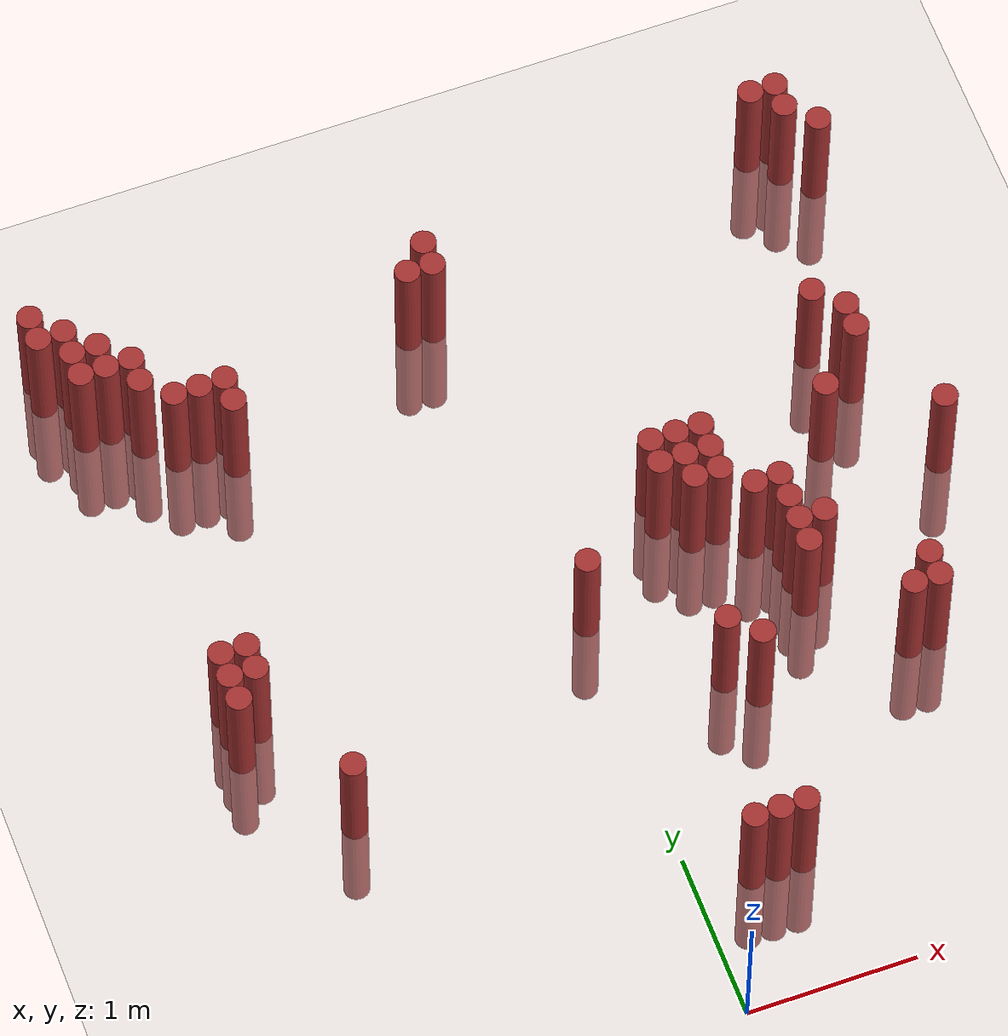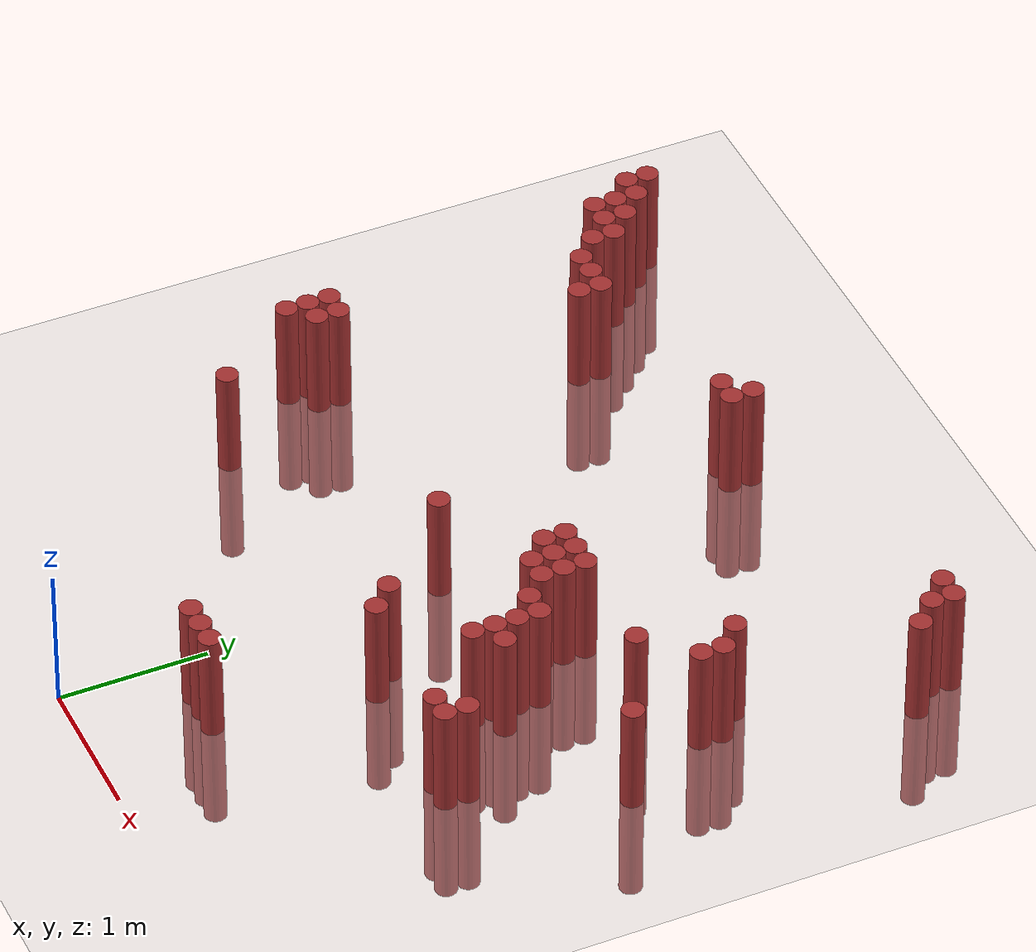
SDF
<sdf version="1.6">
 <world name="default">
  <model name="ground_plane">
   <static>1</static>
   <link name="link">
    <collision name="collision">
     <geometry><plane><normal>0 0 1</normal><size>100 100</size></plane></geometry>
     <surface><friction><ode><mu>100</mu><mu2>50</mu2></ode></friction></surface>
    </collision>
    <visual name="visual">
     <cast_shadows>0</cast_shadows>
     <geometry><plane><normal>0 0 1</normal><size>100 100</size></plane></geometry>
     <material>
      <script><uri>file://media/materials/scripts/gazebo.material</uri><name>Gazebo/Grey</name></script>
     </material>
    </visual>
   </link>
  </model>
  <model name="unit_cylinder_312">
   <static>1</static>
   <pose>-2.375000 4.975000 0.000000 0.000000 0.000000 0.000000</pose>
   <link name="link">
    <inertial>
     <mass>1</mass>
     <inertia><ixx>0.145833</ixx><ixy>0</ixy><ixz>0</ixz><iyy>0.145833</iyy><iyz>0</iyz><izz>0.125</izz></inertia>
    </inertial>
    <collision name="collision">
     <geometry><cylinder><radius>0.075000</radius><length>1.5</length></cylinder></geometry>
    </collision>
    <visual name="visual">
     <geometry><cylinder><radius>0.075000</radius><length>1.5</length></cylinder></geometry>
     <material>
      <ambient>0.648000 0.192000 0.192000 1</ambient>
      <diffuse>0.648000 0.192000 0.192000 1</diffuse>
     </material>
     <material>
      <script><name>Gazebo/Grey</name><uri>file://media/materials/scripts/gazebo.material</uri></script>
     </material>
    </visual>
   </link>
  </model>
  <model name="unit_cylinder_313">
   <static>1</static>
   <pose>-2.375000 5.125000 0.000000 0.000000 0.000000 0.000000</pose>
   <link name="link">
    <inertial>
     <mass>1</mass>
     <inertia><ixx>0.145833</ixx><ixy>0</ixy><ixz>0</ixz><iyy>0.145833</iyy><iyz>0</iyz><izz>0.125</izz></inertia>
    </inertial>
    <collision name="collision">
     <geometry><cylinder><radius>0.075000</radius><length>1.5</length></cylinder></geometry>
    </collision>
    <visual name="visual">
     <geometry><cylinder><radius>0.075000</radius><length>1.5</length></cylinder></geometry>
     <material>
      <ambient>0.648000 0.192000 0.192000 1</ambient>
      <diffuse>0.648000 0.192000 0.192000 1</diffuse>
     </material>
     <material>
      <script><name>Gazebo/Grey</name><uri>file://media/materials/scripts/gazebo.material</uri></script>
     </material>
    </visual>
   </link>
  </model>
  <model name="unit_cylinder_316">
   <static>1</static>
   <pose>-2.225000 4.675000 0.000000 0.000000 0.000000 0.000000</pose>
   <link name="link">
    <inertial>
     <mass>1</mass>
     <inertia><ixx>0.145833</ixx><ixy>0</ixy><ixz>0</ixz><iyy>0.145833</iyy><iyz>0</iyz><izz>0.125</izz></inertia>
    </inertial>
    <collision name="collision">
     <geometry><cylinder><radius>0.075000</radius><length>1.5</length></cylinder></geometry>
    </collision>
    <visual name="visual">
     <geometry><cylinder><radius>0.075000</radius><length>1.5</length></cylinder></geometry>
     <material>
      <ambient>0.648000 0.192000 0.192000 1</ambient>
      <diffuse>0.648000 0.192000 0.192000 1</diffuse>
     </material>
     <material>
      <script><name>Gazebo/Grey</name><uri>file://media/materials/scripts/gazebo.material</uri></script>
     </material>
    </visual>
   </link>
  </model>
  <model name="unit_cylinder_317">
   <static>1</static>
   <pose>-2.225000 4.825000 0.000000 0.000000 0.000000 0.000000</pose>
   <link name="link">
    <inertial>
     <mass>1</mass>
     <inertia><ixx>0.145833</ixx><ixy>0</ixy><ixz>0</ixz><iyy>0.145833</iyy><iyz>0</iyz><izz>0.125</izz></inertia>
    </inertial>
    <collision name="collision">
     <geometry><cylinder><radius>0.075000</radius><length>1.5</length></cylinder></geometry>
    </collision>
    <visual name="visual">
     <geometry><cylinder><radius>0.075000</radius><length>1.5</length></cylinder></geometry>
     <material>
      <ambient>0.648000 0.192000 0.192000 1</ambient>
      <diffuse>0.648000 0.192000 0.192000 1</diffuse>
     </material>
     <material>
      <script><name>Gazebo/Grey</name><uri>file://media/materials/scripts/gazebo.material</uri></script>
     </material>
    </visual>
   </link>
  </model>
  <model name="unit_cylinder_318">
   <static>1</static>
   <pose>-2.225000 4.975000 0.000000 0.000000 0.000000 0.000000</pose>
   <link name="link">
    <inertial>
     <mass>1</mass>
     <inertia><ixx>0.145833</ixx><ixy>0</ixy><ixz>0</ixz><iyy>0.145833</iyy><iyz>0</iyz><izz>0.125</izz></inertia>
    </inertial>
    <collision name="collision">
     <geometry><cylinder><radius>0.075000</radius><length>1.5</length></cylinder></geometry>
    </collision>
    <visual name="visual">
     <geometry><cylinder><radius>0.075000</radius><length>1.5</length></cylinder></geometry>
     <material>
      <ambient>0.648000 0.192000 0.192000 1</ambient>
      <diffuse>0.648000 0.192000 0.192000 1</diffuse>
     </material>
     <material>
      <script><name>Gazebo/Grey</name><uri>file://media/materials/scripts/gazebo.material</uri></script>
     </material>
    </visual>
   </link>
  </model>
  <model name="unit_cylinder_322">
   <static>1</static>
   <pose>-2.075000 2.425000 0.000000 0.000000 0.000000 0.000000</pose>
   <link name="link">
    <inertial>
     <mass>1</mass>
     <inertia><ixx>0.145833</ixx><ixy>0</ixy><ixz>0</ixz><iyy>0.145833</iyy><iyz>0</iyz><izz>0.125</izz></inertia>
    </inertial>
    <collision name="collision">
     <geometry><cylinder><radius>0.075000</radius><length>1.5</length></cylinder></geometry>
    </collision>
    <visual name="visual">
     <geometry><cylinder><radius>0.075000</radius><length>1.5</length></cylinder></geometry>
     <material>
      <ambient>0.648000 0.192000 0.192000 1</ambient>
      <diffuse>0.648000 0.192000 0.192000 1</diffuse>
     </material>
     <material>
      <script><name>Gazebo/Grey</name><uri>file://media/materials/scripts/gazebo.material</uri></script>
     </material>
    </visual>
   </link>
  </model>
  <model name="unit_cylinder_323">
   <static>1</static>
   <pose>-2.075000 2.575000 0.000000 0.000000 0.000000 0.000000</pose>
   <link name="link">
    <inertial>
     <mass>1</mass>
     <inertia><ixx>0.145833</ixx><ixy>0</ixy><ixz>0</ixz><iyy>0.145833</iyy><iyz>0</iyz><izz>0.125</izz></inertia>
    </inertial>
    <collision name="collision">
     <geometry><cylinder><radius>0.075000</radius><length>1.5</length></cylinder></geometry>
    </collision>
    <visual name="visual">
     <geometry><cylinder><radius>0.075000</radius><length>1.5</length></cylinder></geometry>
     <material>
      <ambient>0.648000 0.192000 0.192000 1</ambient>
      <diffuse>0.648000 0.192000 0.192000 1</diffuse>
     </material>
     <material>
      <script><name>Gazebo/Grey</name><uri>file://media/materials/scripts/gazebo.material</uri></script>
     </material>
    </visual>
   </link>
  </model>
  <model name="unit_cylinder_324">
   <static>1</static>
   <pose>-2.075000 2.725000 0.000000 0.000000 0.000000 0.000000</pose>
   <link name="link">
    <inertial>
     <mass>1</mass>
     <inertia><ixx>0.145833</ixx><ixy>0</ixy><ixz>0</ixz><iyy>0.145833</iyy><iyz>0</iyz><izz>0.125</izz></inertia>
    </inertial>
    <collision name="collision">
     <geometry><cylinder><radius>0.075000</radius><length>1.5</length></cylinder></geometry>
    </collision>
    <visual name="visual">
     <geometry><cylinder><radius>0.075000</radius><length>1.5</length></cylinder></geometry>
     <material>
      <ambient>0.648000 0.192000 0.192000 1</ambient>
      <diffuse>0.648000 0.192000 0.192000 1</diffuse>
     </material>
     <material>
      <script><name>Gazebo/Grey</name><uri>file://media/materials/scripts/gazebo.material</uri></script>
     </material>
    </visual>
   </link>
  </model>
  <model name="unit_cylinder_325">
   <static>1</static>
   <pose>-2.075000 4.675000 0.000000 0.000000 0.000000 0.000000</pose>
   <link name="link">
    <inertial>
     <mass>1</mass>
     <inertia><ixx>0.145833</ixx><ixy>0</ixy><ixz>0</ixz><iyy>0.145833</iyy><iyz>0</iyz><izz>0.125</izz></inertia>
    </inertial>
    <collision name="collision">
     <geometry><cylinder><radius>0.075000</radius><length>1.5</length></cylinder></geometry>
    </collision>
    <visual name="visual">
     <geometry><cylinder><radius>0.075000</radius><length>1.5</length></cylinder></geometry>
     <material>
      <ambient>0.648000 0.192000 0.192000 1</ambient>
      <diffuse>0.648000 0.192000 0.192000 1</diffuse>
     </material>
     <material>
      <script><name>Gazebo/Grey</name><uri>file://media/materials/scripts/gazebo.material</uri></script>
     </material>
    </visual>
   </link>
  </model>
  <model name="unit_cylinder_326">
   <static>1</static>
   <pose>-2.075000 4.825000 0.000000 0.000000 0.000000 0.000000</pose>
   <link name="link">
    <inertial>
     <mass>1</mass>
     <inertia><ixx>0.145833</ixx><ixy>0</ixy><ixz>0</ixz><iyy>0.145833</iyy><iyz>0</iyz><izz>0.125</izz></inertia>
    </inertial>
    <collision name="collision">
     <geometry><cylinder><radius>0.075000</radius><length>1.5</length></cylinder></geometry>
    </collision>
    <visual name="visual">
     <geometry><cylinder><radius>0.075000</radius><length>1.5</length></cylinder></geometry>
     <material>
      <ambient>0.648000 0.192000 0.192000 1</ambient>
      <diffuse>0.648000 0.192000 0.192000 1</diffuse>
     </material>
     <material>
      <script><name>Gazebo/Grey</name><uri>file://media/materials/scripts/gazebo.material</uri></script>
     </material>
    </visual>
   </link>
  </model>
  <model name="unit_cylinder_328">
   <static>1</static>
   <pose>-1.925000 2.575000 0.000000 0.000000 0.000000 0.000000</pose>
   <link name="link">
    <inertial>
     <mass>1</mass>
     <inertia><ixx>0.145833</ixx><ixy>0</ixy><ixz>0</ixz><iyy>0.145833</iyy><iyz>0</iyz><izz>0.125</izz></inertia>
    </inertial>
    <collision name="collision">
     <geometry><cylinder><radius>0.075000</radius><length>1.5</length></cylinder></geometry>
    </collision>
    <visual name="visual">
     <geometry><cylinder><radius>0.075000</radius><length>1.5</length></cylinder></geometry>
     <material>
      <ambient>0.648000 0.192000 0.192000 1</ambient>
      <diffuse>0.648000 0.192000 0.192000 1</diffuse>
     </material>
     <material>
      <script><name>Gazebo/Grey</name><uri>file://media/materials/scripts/gazebo.material</uri></script>
     </material>
    </visual>
   </link>
  </model>
  <model name="unit_cylinder_329">
   <static>1</static>
   <pose>-1.925000 2.725000 0.000000 0.000000 0.000000 0.000000</pose>
   <link name="link">
    <inertial>
     <mass>1</mass>
     <inertia><ixx>0.145833</ixx><ixy>0</ixy><ixz>0</ixz><iyy>0.145833</iyy><iyz>0</iyz><izz>0.125</izz></inertia>
    </inertial>
    <collision name="collision">
     <geometry><cylinder><radius>0.075000</radius><length>1.5</length></cylinder></geometry>
    </collision>
    <visual name="visual">
     <geometry><cylinder><radius>0.075000</radius><length>1.5</length></cylinder></geometry>
     <material>
      <ambient>0.648000 0.192000 0.192000 1</ambient>
      <diffuse>0.648000 0.192000 0.192000 1</diffuse>
     </material>
     <material>
      <script><name>Gazebo/Grey</name><uri>file://media/materials/scripts/gazebo.material</uri></script>
     </material>
    </visual>
   </link>
  </model>
  <model name="unit_cylinder_330">
   <static>1</static>
   <pose>-1.925000 4.525000 0.000000 0.000000 0.000000 0.000000</pose>
   <link name="link">
    <inertial>
     <mass>1</mass>
     <inertia><ixx>0.145833</ixx><ixy>0</ixy><ixz>0</ixz><iyy>0.145833</iyy><iyz>0</iyz><izz>0.125</izz></inertia>
    </inertial>
    <collision name="collision">
     <geometry><cylinder><radius>0.075000</radius><length>1.5</length></cylinder></geometry>
    </collision>
    <visual name="visual">
     <geometry><cylinder><radius>0.075000</radius><length>1.5</length></cylinder></geometry>
     <material>
      <ambient>0.648000 0.192000 0.192000 1</ambient>
      <diffuse>0.648000 0.192000 0.192000 1</diffuse>
     </material>
     <material>
      <script><name>Gazebo/Grey</name><uri>file://media/materials/scripts/gazebo.material</uri></script>
     </material>
    </visual>
   </link>
  </model>
  <model name="unit_cylinder_331">
   <static>1</static>
   <pose>-1.925000 4.675000 0.000000 0.000000 0.000000 0.000000</pose>
   <link name="link">
    <inertial>
     <mass>1</mass>
     <inertia><ixx>0.145833</ixx><ixy>0</ixy><ixz>0</ixz><iyy>0.145833</iyy><iyz>0</iyz><izz>0.125</izz></inertia>
    </inertial>
    <collision name="collision">
     <geometry><cylinder><radius>0.075000</radius><length>1.5</length></cylinder></geometry>
    </collision>
    <visual name="visual">
     <geometry><cylinder><radius>0.075000</radius><length>1.5</length></cylinder></geometry>
     <material>
      <ambient>0.648000 0.192000 0.192000 1</ambient>
      <diffuse>0.648000 0.192000 0.192000 1</diffuse>
     </material>
     <material>
      <script><name>Gazebo/Grey</name><uri>file://media/materials/scripts/gazebo.material</uri></script>
     </material>
    </visual>
   </link>
  </model>
  <model name="unit_cylinder_333">
   <static>1</static>
   <pose>-1.775000 4.375000 0.000000 0.000000 0.000000 0.000000</pose>
   <link name="link">
    <inertial>
     <mass>1</mass>
     <inertia><ixx>0.145833</ixx><ixy>0</ixy><ixz>0</ixz><iyy>0.145833</iyy><iyz>0</iyz><izz>0.125</izz></inertia>
    </inertial>
    <collision name="collision">
     <geometry><cylinder><radius>0.075000</radius><length>1.5</length></cylinder></geometry>
    </collision>
    <visual name="visual">
     <geometry><cylinder><radius>0.075000</radius><length>1.5</length></cylinder></geometry>
     <material>
      <ambient>0.648000 0.192000 0.192000 1</ambient>
      <diffuse>0.648000 0.192000 0.192000 1</diffuse>
     </material>
     <material>
      <script><name>Gazebo/Grey</name><uri>file://media/materials/scripts/gazebo.material</uri></script>
     </material>
    </visual>
   </link>
  </model>
  <model name="unit_cylinder_336">
   <static>1</static>
   <pose>-1.625000 1.825000 0.000000 0.000000 0.000000 0.000000</pose>
   <link name="link">
    <inertial>
     <mass>1</mass>
     <inertia><ixx>0.145833</ixx><ixy>0</ixy><ixz>0</ixz><iyy>0.145833</iyy><iyz>0</iyz><izz>0.125</izz></inertia>
    </inertial>
    <collision name="collision">
     <geometry><cylinder><radius>0.075000</radius><length>1.5</length></cylinder></geometry>
    </collision>
    <visual name="visual">
     <geometry><cylinder><radius>0.075000</radius><length>1.5</length></cylinder></geometry>
     <material>
      <ambient>0.648000 0.192000 0.192000 1</ambient>
      <diffuse>0.648000 0.192000 0.192000 1</diffuse>
     </material>
     <material>
      <script><name>Gazebo/Grey</name><uri>file://media/materials/scripts/gazebo.material</uri></script>
     </material>
    </visual>
   </link>
  </model>
  <model name="unit_cylinder_337">
   <static>1</static>
   <pose>-1.625000 4.375000 0.000000 0.000000 0.000000 0.000000</pose>
   <link name="link">
    <inertial>
     <mass>1</mass>
     <inertia><ixx>0.145833</ixx><ixy>0</ixy><ixz>0</ixz><iyy>0.145833</iyy><iyz>0</iyz><izz>0.125</izz></inertia>
    </inertial>
    <collision name="collision">
     <geometry><cylinder><radius>0.075000</radius><length>1.5</length></cylinder></geometry>
    </collision>
    <visual name="visual">
     <geometry><cylinder><radius>0.075000</radius><length>1.5</length></cylinder></geometry>
     <material>
      <ambient>0.648000 0.192000 0.192000 1</ambient>
      <diffuse>0.648000 0.192000 0.192000 1</diffuse>
     </material>
     <material>
      <script><name>Gazebo/Grey</name><uri>file://media/materials/scripts/gazebo.material</uri></script>
     </material>
    </visual>
   </link>
  </model>
  <model name="unit_cylinder_338">
   <static>1</static>
   <pose>-1.475000 4.225000 0.000000 0.000000 0.000000 0.000000</pose>
   <link name="link">
    <inertial>
     <mass>1</mass>
     <inertia><ixx>0.145833</ixx><ixy>0</ixy><ixz>0</ixz><iyy>0.145833</iyy><iyz>0</iyz><izz>0.125</izz></inertia>
    </inertial>
    <collision name="collision">
     <geometry><cylinder><radius>0.075000</radius><length>1.5</length></cylinder></geometry>
    </collision>
    <visual name="visual">
     <geometry><cylinder><radius>0.075000</radius><length>1.5</length></cylinder></geometry>
     <material>
      <ambient>0.648000 0.192000 0.192000 1</ambient>
      <diffuse>0.648000 0.192000 0.192000 1</diffuse>
     </material>
     <material>
      <script><name>Gazebo/Grey</name><uri>file://media/materials/scripts/gazebo.material</uri></script>
     </material>
    </visual>
   </link>
  </model>
  <model name="unit_cylinder_339">
   <static>1</static>
   <pose>-1.475000 4.375000 0.000000 0.000000 0.000000 0.000000</pose>
   <link name="link">
    <inertial>
     <mass>1</mass>
     <inertia><ixx>0.145833</ixx><ixy>0</ixy><ixz>0</ixz><iyy>0.145833</iyy><iyz>0</iyz><izz>0.125</izz></inertia>
    </inertial>
    <collision name="collision">
     <geometry><cylinder><radius>0.075000</radius><length>1.5</length></cylinder></geometry>
    </collision>
    <visual name="visual">
     <geometry><cylinder><radius>0.075000</radius><length>1.5</length></cylinder></geometry>
     <material>
      <ambient>0.648000 0.192000 0.192000 1</ambient>
      <diffuse>0.648000 0.192000 0.192000 1</diffuse>
     </material>
     <material>
      <script><name>Gazebo/Grey</name><uri>file://media/materials/scripts/gazebo.material</uri></script>
     </material>
    </visual>
   </link>
  </model>
  <model name="unit_cylinder_340">
   <static>1</static>
   <pose>-0.275000 4.675000 0.000000 0.000000 0.000000 0.000000</pose>
   <link name="link">
    <inertial>
     <mass>1</mass>
     <inertia><ixx>0.145833</ixx><ixy>0</ixy><ixz>0</ixz><iyy>0.145833</iyy><iyz>0</iyz><izz>0.125</izz></inertia>
    </inertial>
    <collision name="collision">
     <geometry><cylinder><radius>0.075000</radius><length>1.5</length></cylinder></geometry>
    </collision>
    <visual name="visual">
     <geometry><cylinder><radius>0.075000</radius><length>1.5</length></cylinder></geometry>
     <material>
      <ambient>0.648000 0.192000 0.192000 1</ambient>
      <diffuse>0.648000 0.192000 0.192000 1</diffuse>
     </material>
     <material>
      <script><name>Gazebo/Grey</name><uri>file://media/materials/scripts/gazebo.material</uri></script>
     </material>
    </visual>
   </link>
  </model>
  <model name="unit_cylinder_341">
   <static>1</static>
   <pose>-0.125000 4.675000 0.000000 0.000000 0.000000 0.000000</pose>
   <link name="link">
    <inertial>
     <mass>1</mass>
     <inertia><ixx>0.145833</ixx><ixy>0</ixy><ixz>0</ixz><iyy>0.145833</iyy><iyz>0</iyz><izz>0.125</izz></inertia>
    </inertial>
    <collision name="collision">
     <geometry><cylinder><radius>0.075000</radius><length>1.5</length></cylinder></geometry>
    </collision>
    <visual name="visual">
     <geometry><cylinder><radius>0.075000</radius><length>1.5</length></cylinder></geometry>
     <material>
      <ambient>0.648000 0.192000 0.192000 1</ambient>
      <diffuse>0.648000 0.192000 0.192000 1</diffuse>
     </material>
     <material>
      <script><name>Gazebo/Grey</name><uri>file://media/materials/scripts/gazebo.material</uri></script>
     </material>
    </visual>
   </link>
  </model>
  <model name="unit_cylinder_342">
   <static>1</static>
   <pose>-0.125000 4.825000 0.000000 0.000000 0.000000 0.000000</pose>
   <link name="link">
    <inertial>
     <mass>1</mass>
     <inertia><ixx>0.145833</ixx><ixy>0</ixy><ixz>0</ixz><iyy>0.145833</iyy><iyz>0</iyz><izz>0.125</izz></inertia>
    </inertial>
    <collision name="collision">
     <geometry><cylinder><radius>0.075000</radius><length>1.5</length></cylinder></geometry>
    </collision>
    <visual name="visual">
     <geometry><cylinder><radius>0.075000</radius><length>1.5</length></cylinder></geometry>
     <material>
      <ambient>0.648000 0.192000 0.192000 1</ambient>
      <diffuse>0.648000 0.192000 0.192000 1</diffuse>
     </material>
     <material>
      <script><name>Gazebo/Grey</name><uri>file://media/materials/scripts/gazebo.material</uri></script>
     </material>
    </visual>
   </link>
  </model>
  <model name="unit_cylinder_343">
   <static>1</static>
   <pose>0.025000 2.575000 0.000000 0.000000 0.000000 0.000000</pose>
   <link name="link">
    <inertial>
     <mass>1</mass>
     <inertia><ixx>0.145833</ixx><ixy>0</ixy><ixz>0</ixz><iyy>0.145833</iyy><iyz>0</iyz><izz>0.125</izz></inertia>
    </inertial>
    <collision name="collision">
     <geometry><cylinder><radius>0.075000</radius><length>1.5</length></cylinder></geometry>
    </collision>
    <visual name="visual">
     <geometry><cylinder><radius>0.075000</radius><length>1.5</length></cylinder></geometry>
     <material>
      <ambient>0.648000 0.192000 0.192000 1</ambient>
      <diffuse>0.648000 0.192000 0.192000 1</diffuse>
     </material>
     <material>
      <script><name>Gazebo/Grey</name><uri>file://media/materials/scripts/gazebo.material</uri></script>
     </material>
    </visual>
   </link>
  </model>
  <model name="unit_cylinder_347">
   <static>1</static>
   <pose>0.325000 0.775000 0.000000 0.000000 0.000000 0.000000</pose>
   <link name="link">
    <inertial>
     <mass>1</mass>
     <inertia><ixx>0.145833</ixx><ixy>0</ixy><ixz>0</ixz><iyy>0.145833</iyy><iyz>0</iyz><izz>0.125</izz></inertia>
    </inertial>
    <collision name="collision">
     <geometry><cylinder><radius>0.075000</radius><length>1.5</length></cylinder></geometry>
    </collision>
    <visual name="visual">
     <geometry><cylinder><radius>0.075000</radius><length>1.5</length></cylinder></geometry>
     <material>
      <ambient>0.648000 0.192000 0.192000 1</ambient>
      <diffuse>0.648000 0.192000 0.192000 1</diffuse>
     </material>
     <material>
      <script><name>Gazebo/Grey</name><uri>file://media/materials/scripts/gazebo.material</uri></script>
     </material>
    </visual>
   </link>
  </model>
  <model name="unit_cylinder_350">
   <static>1</static>
   <pose>0.475000 0.775000 0.000000 0.000000 0.000000 0.000000</pose>
   <link name="link">
    <inertial>
     <mass>1</mass>
     <inertia><ixx>0.145833</ixx><ixy>0</ixy><ixz>0</ixz><iyy>0.145833</iyy><iyz>0</iyz><izz>0.125</izz></inertia>
    </inertial>
    <collision name="collision">
     <geometry><cylinder><radius>0.075000</radius><length>1.5</length></cylinder></geometry>
    </collision>
    <visual name="visual">
     <geometry><cylinder><radius>0.075000</radius><length>1.5</length></cylinder></geometry>
     <material>
      <ambient>0.648000 0.192000 0.192000 1</ambient>
      <diffuse>0.648000 0.192000 0.192000 1</diffuse>
     </material>
     <material>
      <script><name>Gazebo/Grey</name><uri>file://media/materials/scripts/gazebo.material</uri></script>
     </material>
    </visual>
   </link>
  </model>
  <model name="unit_cylinder_352">
   <static>1</static>
   <pose>0.625000 0.775000 0.000000 0.000000 0.000000 0.000000</pose>
   <link name="link">
    <inertial>
     <mass>1</mass>
     <inertia><ixx>0.145833</ixx><ixy>0</ixy><ixz>0</ixz><iyy>0.145833</iyy><iyz>0</iyz><izz>0.125</izz></inertia>
    </inertial>
    <collision name="collision">
     <geometry><cylinder><radius>0.075000</radius><length>1.5</length></cylinder></geometry>
    </collision>
    <visual name="visual">
     <geometry><cylinder><radius>0.075000</radius><length>1.5</length></cylinder></geometry>
     <material>
      <ambient>0.648000 0.192000 0.192000 1</ambient>
      <diffuse>0.648000 0.192000 0.192000 1</diffuse>
     </material>
     <material>
      <script><name>Gazebo/Grey</name><uri>file://media/materials/scripts/gazebo.material</uri></script>
     </material>
    </visual>
   </link>
  </model>
  <model name="unit_cylinder_353">
   <static>1</static>
   <pose>0.625000 1.975000 0.000000 0.000000 0.000000 0.000000</pose>
   <link name="link">
    <inertial>
     <mass>1</mass>
     <inertia><ixx>0.145833</ixx><ixy>0</ixy><ixz>0</ixz><iyy>0.145833</iyy><iyz>0</iyz><izz>0.125</izz></inertia>
    </inertial>
    <collision name="collision">
     <geometry><cylinder><radius>0.075000</radius><length>1.5</length></cylinder></geometry>
    </collision>
    <visual name="visual">
     <geometry><cylinder><radius>0.075000</radius><length>1.5</length></cylinder></geometry>
     <material>
      <ambient>0.648000 0.192000 0.192000 1</ambient>
      <diffuse>0.648000 0.192000 0.192000 1</diffuse>
     </material>
     <material>
      <script><name>Gazebo/Grey</name><uri>file://media/materials/scripts/gazebo.material</uri></script>
     </material>
    </visual>
   </link>
  </model>
  <model name="unit_cylinder_354">
   <static>1</static>
   <pose>0.625000 3.025000 0.000000 0.000000 0.000000 0.000000</pose>
   <link name="link">
    <inertial>
     <mass>1</mass>
     <inertia><ixx>0.145833</ixx><ixy>0</ixy><ixz>0</ixz><iyy>0.145833</iyy><iyz>0</iyz><izz>0.125</izz></inertia>
    </inertial>
    <collision name="collision">
     <geometry><cylinder><radius>0.075000</radius><length>1.5</length></cylinder></geometry>
    </collision>
    <visual name="visual">
     <geometry><cylinder><radius>0.075000</radius><length>1.5</length></cylinder></geometry>
     <material>
      <ambient>0.648000 0.192000 0.192000 1</ambient>
      <diffuse>0.648000 0.192000 0.192000 1</diffuse>
     </material>
     <material>
      <script><name>Gazebo/Grey</name><uri>file://media/materials/scripts/gazebo.material</uri></script>
     </material>
    </visual>
   </link>
  </model>
  <model name="unit_cylinder_355">
   <static>1</static>
   <pose>0.625000 3.175000 0.000000 0.000000 0.000000 0.000000</pose>
   <link name="link">
    <inertial>
     <mass>1</mass>
     <inertia><ixx>0.145833</ixx><ixy>0</ixy><ixz>0</ixz><iyy>0.145833</iyy><iyz>0</iyz><izz>0.125</izz></inertia>
    </inertial>
    <collision name="collision">
     <geometry><cylinder><radius>0.075000</radius><length>1.5</length></cylinder></geometry>
    </collision>
    <visual name="visual">
     <geometry><cylinder><radius>0.075000</radius><length>1.5</length></cylinder></geometry>
     <material>
      <ambient>0.648000 0.192000 0.192000 1</ambient>
      <diffuse>0.648000 0.192000 0.192000 1</diffuse>
     </material>
     <material>
      <script><name>Gazebo/Grey</name><uri>file://media/materials/scripts/gazebo.material</uri></script>
     </material>
    </visual>
   </link>
  </model>
  <model name="unit_cylinder_358">
   <static>1</static>
   <pose>0.775000 1.825000 0.000000 0.000000 0.000000 0.000000</pose>
   <link name="link">
    <inertial>
     <mass>1</mass>
     <inertia><ixx>0.145833</ixx><ixy>0</ixy><ixz>0</ixz><iyy>0.145833</iyy><iyz>0</iyz><izz>0.125</izz></inertia>
    </inertial>
    <collision name="collision">
     <geometry><cylinder><radius>0.075000</radius><length>1.5</length></cylinder></geometry>
    </collision>
    <visual name="visual">
     <geometry><cylinder><radius>0.075000</radius><length>1.5</length></cylinder></geometry>
     <material>
      <ambient>0.648000 0.192000 0.192000 1</ambient>
      <diffuse>0.648000 0.192000 0.192000 1</diffuse>
     </material>
     <material>
      <script><name>Gazebo/Grey</name><uri>file://media/materials/scripts/gazebo.material</uri></script>
     </material>
    </visual>
   </link>
  </model>
  <model name="unit_cylinder_359">
   <static>1</static>
   <pose>0.775000 2.875000 0.000000 0.000000 0.000000 0.000000</pose>
   <link name="link">
    <inertial>
     <mass>1</mass>
     <inertia><ixx>0.145833</ixx><ixy>0</ixy><ixz>0</ixz><iyy>0.145833</iyy><iyz>0</iyz><izz>0.125</izz></inertia>
    </inertial>
    <collision name="collision">
     <geometry><cylinder><radius>0.075000</radius><length>1.5</length></cylinder></geometry>
    </collision>
    <visual name="visual">
     <geometry><cylinder><radius>0.075000</radius><length>1.5</length></cylinder></geometry>
     <material>
      <ambient>0.648000 0.192000 0.192000 1</ambient>
      <diffuse>0.648000 0.192000 0.192000 1</diffuse>
     </material>
     <material>
      <script><name>Gazebo/Grey</name><uri>file://media/materials/scripts/gazebo.material</uri></script>
     </material>
    </visual>
   </link>
  </model>
  <model name="unit_cylinder_360">
   <static>1</static>
   <pose>0.775000 3.025000 0.000000 0.000000 0.000000 0.000000</pose>
   <link name="link">
    <inertial>
     <mass>1</mass>
     <inertia><ixx>0.145833</ixx><ixy>0</ixy><ixz>0</ixz><iyy>0.145833</iyy><iyz>0</iyz><izz>0.125</izz></inertia>
    </inertial>
    <collision name="collision">
     <geometry><cylinder><radius>0.075000</radius><length>1.5</length></cylinder></geometry>
    </collision>
    <visual name="visual">
     <geometry><cylinder><radius>0.075000</radius><length>1.5</length></cylinder></geometry>
     <material>
      <ambient>0.648000 0.192000 0.192000 1</ambient>
      <diffuse>0.648000 0.192000 0.192000 1</diffuse>
     </material>
     <material>
      <script><name>Gazebo/Grey</name><uri>file://media/materials/scripts/gazebo.material</uri></script>
     </material>
    </visual>
   </link>
  </model>
  <model name="unit_cylinder_361">
   <static>1</static>
   <pose>0.775000 3.175000 0.000000 0.000000 0.000000 0.000000</pose>
   <link name="link">
    <inertial>
     <mass>1</mass>
     <inertia><ixx>0.145833</ixx><ixy>0</ixy><ixz>0</ixz><iyy>0.145833</iyy><iyz>0</iyz><izz>0.125</izz></inertia>
    </inertial>
    <collision name="collision">
     <geometry><cylinder><radius>0.075000</radius><length>1.5</length></cylinder></geometry>
    </collision>
    <visual name="visual">
     <geometry><cylinder><radius>0.075000</radius><length>1.5</length></cylinder></geometry>
     <material>
      <ambient>0.648000 0.192000 0.192000 1</ambient>
      <diffuse>0.648000 0.192000 0.192000 1</diffuse>
     </material>
     <material>
      <script><name>Gazebo/Grey</name><uri>file://media/materials/scripts/gazebo.material</uri></script>
     </material>
    </visual>
   </link>
  </model>
  <model name="unit_cylinder_363">
   <static>1</static>
   <pose>0.925000 2.875000 0.000000 0.000000 0.000000 0.000000</pose>
   <link name="link">
    <inertial>
     <mass>1</mass>
     <inertia><ixx>0.145833</ixx><ixy>0</ixy><ixz>0</ixz><iyy>0.145833</iyy><iyz>0</iyz><izz>0.125</izz></inertia>
    </inertial>
    <collision name="collision">
     <geometry><cylinder><radius>0.075000</radius><length>1.5</length></cylinder></geometry>
    </collision>
    <visual name="visual">
     <geometry><cylinder><radius>0.075000</radius><length>1.5</length></cylinder></geometry>
     <material>
      <ambient>0.648000 0.192000 0.192000 1</ambient>
      <diffuse>0.648000 0.192000 0.192000 1</diffuse>
     </material>
     <material>
      <script><name>Gazebo/Grey</name><uri>file://media/materials/scripts/gazebo.material</uri></script>
     </material>
    </visual>
   </link>
  </model>
  <model name="unit_cylinder_364">
   <static>1</static>
   <pose>0.925000 3.025000 0.000000 0.000000 0.000000 0.000000</pose>
   <link name="link">
    <inertial>
     <mass>1</mass>
     <inertia><ixx>0.145833</ixx><ixy>0</ixy><ixz>0</ixz><iyy>0.145833</iyy><iyz>0</iyz><izz>0.125</izz></inertia>
    </inertial>
    <collision name="collision">
     <geometry><cylinder><radius>0.075000</radius><length>1.5</length></cylinder></geometry>
    </collision>
    <visual name="visual">
     <geometry><cylinder><radius>0.075000</radius><length>1.5</length></cylinder></geometry>
     <material>
      <ambient>0.648000 0.192000 0.192000 1</ambient>
      <diffuse>0.648000 0.192000 0.192000 1</diffuse>
     </material>
     <material>
      <script><name>Gazebo/Grey</name><uri>file://media/materials/scripts/gazebo.material</uri></script>
     </material>
    </visual>
   </link>
  </model>
  <model name="unit_cylinder_365">
   <static>1</static>
   <pose>0.925000 3.175000 0.000000 0.000000 0.000000 0.000000</pose>
   <link name="link">
    <inertial>
     <mass>1</mass>
     <inertia><ixx>0.145833</ixx><ixy>0</ixy><ixz>0</ixz><iyy>0.145833</iyy><iyz>0</iyz><izz>0.125</izz></inertia>
    </inertial>
    <collision name="collision">
     <geometry><cylinder><radius>0.075000</radius><length>1.5</length></cylinder></geometry>
    </collision>
    <visual name="visual">
     <geometry><cylinder><radius>0.075000</radius><length>1.5</length></cylinder></geometry>
     <material>
      <ambient>0.648000 0.192000 0.192000 1</ambient>
      <diffuse>0.648000 0.192000 0.192000 1</diffuse>
     </material>
     <material>
      <script><name>Gazebo/Grey</name><uri>file://media/materials/scripts/gazebo.material</uri></script>
     </material>
    </visual>
   </link>
  </model>
  <model name="unit_cylinder_368">
   <static>1</static>
   <pose>1.075000 2.725000 0.000000 0.000000 0.000000 0.000000</pose>
   <link name="link">
    <inertial>
     <mass>1</mass>
     <inertia><ixx>0.145833</ixx><ixy>0</ixy><ixz>0</ixz><iyy>0.145833</iyy><iyz>0</iyz><izz>0.125</izz></inertia>
    </inertial>
    <collision name="collision">
     <geometry><cylinder><radius>0.075000</radius><length>1.5</length></cylinder></geometry>
    </collision>
    <visual name="visual">
     <geometry><cylinder><radius>0.075000</radius><length>1.5</length></cylinder></geometry>
     <material>
      <ambient>0.648000 0.192000 0.192000 1</ambient>
      <diffuse>0.648000 0.192000 0.192000 1</diffuse>
     </material>
     <material>
      <script><name>Gazebo/Grey</name><uri>file://media/materials/scripts/gazebo.material</uri></script>
     </material>
    </visual>
   </link>
  </model>
  <model name="unit_cylinder_370">
   <static>1</static>
   <pose>1.225000 2.275000 0.000000 0.000000 0.000000 0.000000</pose>
   <link name="link">
    <inertial>
     <mass>1</mass>
     <inertia><ixx>0.145833</ixx><ixy>0</ixy><ixz>0</ixz><iyy>0.145833</iyy><iyz>0</iyz><izz>0.125</izz></inertia>
    </inertial>
    <collision name="collision">
     <geometry><cylinder><radius>0.075000</radius><length>1.5</length></cylinder></geometry>
    </collision>
    <visual name="visual">
     <geometry><cylinder><radius>0.075000</radius><length>1.5</length></cylinder></geometry>
     <material>
      <ambient>0.648000 0.192000 0.192000 1</ambient>
      <diffuse>0.648000 0.192000 0.192000 1</diffuse>
     </material>
     <material>
      <script><name>Gazebo/Grey</name><uri>file://media/materials/scripts/gazebo.material</uri></script>
     </material>
    </visual>
   </link>
  </model>
  <model name="unit_cylinder_371">
   <static>1</static>
   <pose>1.225000 2.425000 0.000000 0.000000 0.000000 0.000000</pose>
   <link name="link">
    <inertial>
     <mass>1</mass>
     <inertia><ixx>0.145833</ixx><ixy>0</ixy><ixz>0</ixz><iyy>0.145833</iyy><iyz>0</iyz><izz>0.125</izz></inertia>
    </inertial>
    <collision name="collision">
     <geometry><cylinder><radius>0.075000</radius><length>1.5</length></cylinder></geometry>
    </collision>
    <visual name="visual">
     <geometry><cylinder><radius>0.075000</radius><length>1.5</length></cylinder></geometry>
     <material>
      <ambient>0.648000 0.192000 0.192000 1</ambient>
      <diffuse>0.648000 0.192000 0.192000 1</diffuse>
     </material>
     <material>
      <script><name>Gazebo/Grey</name><uri>file://media/materials/scripts/gazebo.material</uri></script>
     </material>
    </visual>
   </link>
  </model>
  <model name="unit_cylinder_372">
   <static>1</static>
   <pose>1.225000 2.575000 0.000000 0.000000 0.000000 0.000000</pose>
   <link name="link">
    <inertial>
     <mass>1</mass>
     <inertia><ixx>0.145833</ixx><ixy>0</ixy><ixz>0</ixz><iyy>0.145833</iyy><iyz>0</iyz><izz>0.125</izz></inertia>
    </inertial>
    <collision name="collision">
     <geometry><cylinder><radius>0.075000</radius><length>1.5</length></cylinder></geometry>
    </collision>
    <visual name="visual">
     <geometry><cylinder><radius>0.075000</radius><length>1.5</length></cylinder></geometry>
     <material>
      <ambient>0.648000 0.192000 0.192000 1</ambient>
      <diffuse>0.648000 0.192000 0.192000 1</diffuse>
     </material>
     <material>
      <script><name>Gazebo/Grey</name><uri>file://media/materials/scripts/gazebo.material</uri></script>
     </material>
    </visual>
   </link>
  </model>
  <model name="unit_cylinder_373">
   <static>1</static>
   <pose>1.225000 2.725000 0.000000 0.000000 0.000000 0.000000</pose>
   <link name="link">
    <inertial>
     <mass>1</mass>
     <inertia><ixx>0.145833</ixx><ixy>0</ixy><ixz>0</ixz><iyy>0.145833</iyy><iyz>0</iyz><izz>0.125</izz></inertia>
    </inertial>
    <collision name="collision">
     <geometry><cylinder><radius>0.075000</radius><length>1.5</length></cylinder></geometry>
    </collision>
    <visual name="visual">
     <geometry><cylinder><radius>0.075000</radius><length>1.5</length></cylinder></geometry>
     <material>
      <ambient>0.648000 0.192000 0.192000 1</ambient>
      <diffuse>0.648000 0.192000 0.192000 1</diffuse>
     </material>
     <material>
      <script><name>Gazebo/Grey</name><uri>file://media/materials/scripts/gazebo.material</uri></script>
     </material>
    </visual>
   </link>
  </model>
  <model name="unit_cylinder_374">
   <static>1</static>
   <pose>1.375000 2.425000 0.000000 0.000000 0.000000 0.000000</pose>
   <link name="link">
    <inertial>
     <mass>1</mass>
     <inertia><ixx>0.145833</ixx><ixy>0</ixy><ixz>0</ixz><iyy>0.145833</iyy><iyz>0</iyz><izz>0.125</izz></inertia>
    </inertial>
    <collision name="collision">
     <geometry><cylinder><radius>0.075000</radius><length>1.5</length></cylinder></geometry>
    </collision>
    <visual name="visual">
     <geometry><cylinder><radius>0.075000</radius><length>1.5</length></cylinder></geometry>
     <material>
      <ambient>0.648000 0.192000 0.192000 1</ambient>
      <diffuse>0.648000 0.192000 0.192000 1</diffuse>
     </material>
     <material>
      <script><name>Gazebo/Grey</name><uri>file://media/materials/scripts/gazebo.material</uri></script>
     </material>
    </visual>
   </link>
  </model>
  <model name="unit_cylinder_375">
   <static>1</static>
   <pose>1.675000 1.825000 0.000000 0.000000 0.000000 0.000000</pose>
   <link name="link">
    <inertial>
     <mass>1</mass>
     <inertia><ixx>0.145833</ixx><ixy>0</ixy><ixz>0</ixz><iyy>0.145833</iyy><iyz>0</iyz><izz>0.125</izz></inertia>
    </inertial>
    <collision name="collision">
     <geometry><cylinder><radius>0.075000</radius><length>1.5</length></cylinder></geometry>
    </collision>
    <visual name="visual">
     <geometry><cylinder><radius>0.075000</radius><length>1.5</length></cylinder></geometry>
     <material>
      <ambient>0.648000 0.192000 0.192000 1</ambient>
      <diffuse>0.648000 0.192000 0.192000 1</diffuse>
     </material>
     <material>
      <script><name>Gazebo/Grey</name><uri>file://media/materials/scripts/gazebo.material</uri></script>
     </material>
    </visual>
   </link>
  </model>
  <model name="unit_cylinder_376">
   <static>1</static>
   <pose>1.675000 3.175000 0.000000 0.000000 0.000000 0.000000</pose>
   <link name="link">
    <inertial>
     <mass>1</mass>
     <inertia><ixx>0.145833</ixx><ixy>0</ixy><ixz>0</ixz><iyy>0.145833</iyy><iyz>0</iyz><izz>0.125</izz></inertia>
    </inertial>
    <collision name="collision">
     <geometry><cylinder><radius>0.075000</radius><length>1.5</length></cylinder></geometry>
    </collision>
    <visual name="visual">
     <geometry><cylinder><radius>0.075000</radius><length>1.5</length></cylinder></geometry>
     <material>
      <ambient>0.648000 0.192000 0.192000 1</ambient>
      <diffuse>0.648000 0.192000 0.192000 1</diffuse>
     </material>
     <material>
      <script><name>Gazebo/Grey</name><uri>file://media/materials/scripts/gazebo.material</uri></script>
     </material>
    </visual>
   </link>
  </model>
  <model name="unit_cylinder_377">
   <static>1</static>
   <pose>1.825000 1.825000 0.000000 0.000000 0.000000 0.000000</pose>
   <link name="link">
    <inertial>
     <mass>1</mass>
     <inertia><ixx>0.145833</ixx><ixy>0</ixy><ixz>0</ixz><iyy>0.145833</iyy><iyz>0</iyz><izz>0.125</izz></inertia>
    </inertial>
    <collision name="collision">
     <geometry><cylinder><radius>0.075000</radius><length>1.5</length></cylinder></geometry>
    </collision>
    <visual name="visual">
     <geometry><cylinder><radius>0.075000</radius><length>1.5</length></cylinder></geometry>
     <material>
      <ambient>0.648000 0.192000 0.192000 1</ambient>
      <diffuse>0.648000 0.192000 0.192000 1</diffuse>
     </material>
     <material>
      <script><name>Gazebo/Grey</name><uri>file://media/materials/scripts/gazebo.material</uri></script>
     </material>
    </visual>
   </link>
  </model>
  <model name="unit_cylinder_378">
   <static>1</static>
   <pose>1.825000 1.975000 0.000000 0.000000 0.000000 0.000000</pose>
   <link name="link">
    <inertial>
     <mass>1</mass>
     <inertia><ixx>0.145833</ixx><ixy>0</ixy><ixz>0</ixz><iyy>0.145833</iyy><iyz>0</iyz><izz>0.125</izz></inertia>
    </inertial>
    <collision name="collision">
     <geometry><cylinder><radius>0.075000</radius><length>1.5</length></cylinder></geometry>
    </collision>
    <visual name="visual">
     <geometry><cylinder><radius>0.075000</radius><length>1.5</length></cylinder></geometry>
     <material>
      <ambient>0.648000 0.192000 0.192000 1</ambient>
      <diffuse>0.648000 0.192000 0.192000 1</diffuse>
     </material>
     <material>
      <script><name>Gazebo/Grey</name><uri>file://media/materials/scripts/gazebo.material</uri></script>
     </material>
    </visual>
   </link>
  </model>
  <model name="unit_cylinder_379">
   <static>1</static>
   <pose>1.825000 3.775000 0.000000 0.000000 0.000000 0.000000</pose>
   <link name="link">
    <inertial>
     <mass>1</mass>
     <inertia><ixx>0.145833</ixx><ixy>0</ixy><ixz>0</ixz><iyy>0.145833</iyy><iyz>0</iyz><izz>0.125</izz></inertia>
    </inertial>
    <collision name="collision">
     <geometry><cylinder><radius>0.075000</radius><length>1.5</length></cylinder></geometry>
    </collision>
    <visual name="visual">
     <geometry><cylinder><radius>0.075000</radius><length>1.5</length></cylinder></geometry>
     <material>
      <ambient>0.648000 0.192000 0.192000 1</ambient>
      <diffuse>0.648000 0.192000 0.192000 1</diffuse>
     </material>
     <material>
      <script><name>Gazebo/Grey</name><uri>file://media/materials/scripts/gazebo.material</uri></script>
     </material>
    </visual>
   </link>
  </model>
  <model name="unit_cylinder_380">
   <static>1</static>
   <pose>1.975000 3.475000 0.000000 0.000000 0.000000 0.000000</pose>
   <link name="link">
    <inertial>
     <mass>1</mass>
     <inertia><ixx>0.145833</ixx><ixy>0</ixy><ixz>0</ixz><iyy>0.145833</iyy><iyz>0</iyz><izz>0.125</izz></inertia>
    </inertial>
    <collision name="collision">
     <geometry><cylinder><radius>0.075000</radius><length>1.5</length></cylinder></geometry>
    </collision>
    <visual name="visual">
     <geometry><cylinder><radius>0.075000</radius><length>1.5</length></cylinder></geometry>
     <material>
      <ambient>0.648000 0.192000 0.192000 1</ambient>
      <diffuse>0.648000 0.192000 0.192000 1</diffuse>
     </material>
     <material>
      <script><name>Gazebo/Grey</name><uri>file://media/materials/scripts/gazebo.material</uri></script>
     </material>
    </visual>
   </link>
  </model>
  <model name="unit_cylinder_381">
   <static>1</static>
   <pose>1.975000 3.625000 0.000000 0.000000 0.000000 0.000000</pose>
   <link name="link">
    <inertial>
     <mass>1</mass>
     <inertia><ixx>0.145833</ixx><ixy>0</ixy><ixz>0</ixz><iyy>0.145833</iyy><iyz>0</iyz><izz>0.125</izz></inertia>
    </inertial>
    <collision name="collision">
     <geometry><cylinder><radius>0.075000</radius><length>1.5</length></cylinder></geometry>
    </collision>
    <visual name="visual">
     <geometry><cylinder><radius>0.075000</radius><length>1.5</length></cylinder></geometry>
     <material>
      <ambient>0.648000 0.192000 0.192000 1</ambient>
      <diffuse>0.648000 0.192000 0.192000 1</diffuse>
     </material>
     <material>
      <script><name>Gazebo/Grey</name><uri>file://media/materials/scripts/gazebo.material</uri></script>
     </material>
    </visual>
   </link>
  </model>
  <model name="unit_cylinder_382">
   <static>1</static>
   <pose>1.975000 5.125000 0.000000 0.000000 0.000000 0.000000</pose>
   <link name="link">
    <inertial>
     <mass>1</mass>
     <inertia><ixx>0.145833</ixx><ixy>0</ixy><ixz>0</ixz><iyy>0.145833</iyy><iyz>0</iyz><izz>0.125</izz></inertia>
    </inertial>
    <collision name="collision">
     <geometry><cylinder><radius>0.075000</radius><length>1.5</length></cylinder></geometry>
    </collision>
    <visual name="visual">
     <geometry><cylinder><radius>0.075000</radius><length>1.5</length></cylinder></geometry>
     <material>
      <ambient>0.648000 0.192000 0.192000 1</ambient>
      <diffuse>0.648000 0.192000 0.192000 1</diffuse>
     </material>
     <material>
      <script><name>Gazebo/Grey</name><uri>file://media/materials/scripts/gazebo.material</uri></script>
     </material>
    </visual>
   </link>
  </model>
  <model name="unit_cylinder_383">
   <static>1</static>
   <pose>2.125000 4.975000 0.000000 0.000000 0.000000 0.000000</pose>
   <link name="link">
    <inertial>
     <mass>1</mass>
     <inertia><ixx>0.145833</ixx><ixy>0</ixy><ixz>0</ixz><iyy>0.145833</iyy><iyz>0</iyz><izz>0.125</izz></inertia>
    </inertial>
    <collision name="collision">
     <geometry><cylinder><radius>0.075000</radius><length>1.5</length></cylinder></geometry>
    </collision>
    <visual name="visual">
     <geometry><cylinder><radius>0.075000</radius><length>1.5</length></cylinder></geometry>
     <material>
      <ambient>0.648000 0.192000 0.192000 1</ambient>
      <diffuse>0.648000 0.192000 0.192000 1</diffuse>
     </material>
     <material>
      <script><name>Gazebo/Grey</name><uri>file://media/materials/scripts/gazebo.material</uri></script>
     </material>
    </visual>
   </link>
  </model>
  <model name="unit_cylinder_384">
   <static>1</static>
   <pose>2.125000 5.125000 0.000000 0.000000 0.000000 0.000000</pose>
   <link name="link">
    <inertial>
     <mass>1</mass>
     <inertia><ixx>0.145833</ixx><ixy>0</ixy><ixz>0</ixz><iyy>0.145833</iyy><iyz>0</iyz><izz>0.125</izz></inertia>
    </inertial>
    <collision name="collision">
     <geometry><cylinder><radius>0.075000</radius><length>1.5</length></cylinder></geometry>
    </collision>
    <visual name="visual">
     <geometry><cylinder><radius>0.075000</radius><length>1.5</length></cylinder></geometry>
     <material>
      <ambient>0.648000 0.192000 0.192000 1</ambient>
      <diffuse>0.648000 0.192000 0.192000 1</diffuse>
     </material>
     <material>
      <script><name>Gazebo/Grey</name><uri>file://media/materials/scripts/gazebo.material</uri></script>
     </material>
    </visual>
   </link>
  </model>
  <model name="unit_cylinder_385">
   <static>1</static>
   <pose>2.275000 2.875000 0.000000 0.000000 0.000000 0.000000</pose>
   <link name="link">
    <inertial>
     <mass>1</mass>
     <inertia><ixx>0.145833</ixx><ixy>0</ixy><ixz>0</ixz><iyy>0.145833</iyy><iyz>0</iyz><izz>0.125</izz></inertia>
    </inertial>
    <collision name="collision">
     <geometry><cylinder><radius>0.075000</radius><length>1.5</length></cylinder></geometry>
    </collision>
    <visual name="visual">
     <geometry><cylinder><radius>0.075000</radius><length>1.5</length></cylinder></geometry>
     <material>
      <ambient>0.648000 0.192000 0.192000 1</ambient>
      <diffuse>0.648000 0.192000 0.192000 1</diffuse>
     </material>
     <material>
      <script><name>Gazebo/Grey</name><uri>file://media/materials/scripts/gazebo.material</uri></script>
     </material>
    </visual>
   </link>
  </model>
  <model name="unit_cylinder_386">
   <static>1</static>
   <pose>2.275000 4.825000 0.000000 0.000000 0.000000 0.000000</pose>
   <link name="link">
    <inertial>
     <mass>1</mass>
     <inertia><ixx>0.145833</ixx><ixy>0</ixy><ixz>0</ixz><iyy>0.145833</iyy><iyz>0</iyz><izz>0.125</izz></inertia>
    </inertial>
    <collision name="collision">
     <geometry><cylinder><radius>0.075000</radius><length>1.5</length></cylinder></geometry>
    </collision>
    <visual name="visual">
     <geometry><cylinder><radius>0.075000</radius><length>1.5</length></cylinder></geometry>
     <material>
      <ambient>0.648000 0.192000 0.192000 1</ambient>
      <diffuse>0.648000 0.192000 0.192000 1</diffuse>
     </material>
     <material>
      <script><name>Gazebo/Grey</name><uri>file://media/materials/scripts/gazebo.material</uri></script>
     </material>
    </visual>
   </link>
  </model>
 </world>
</sdf>
